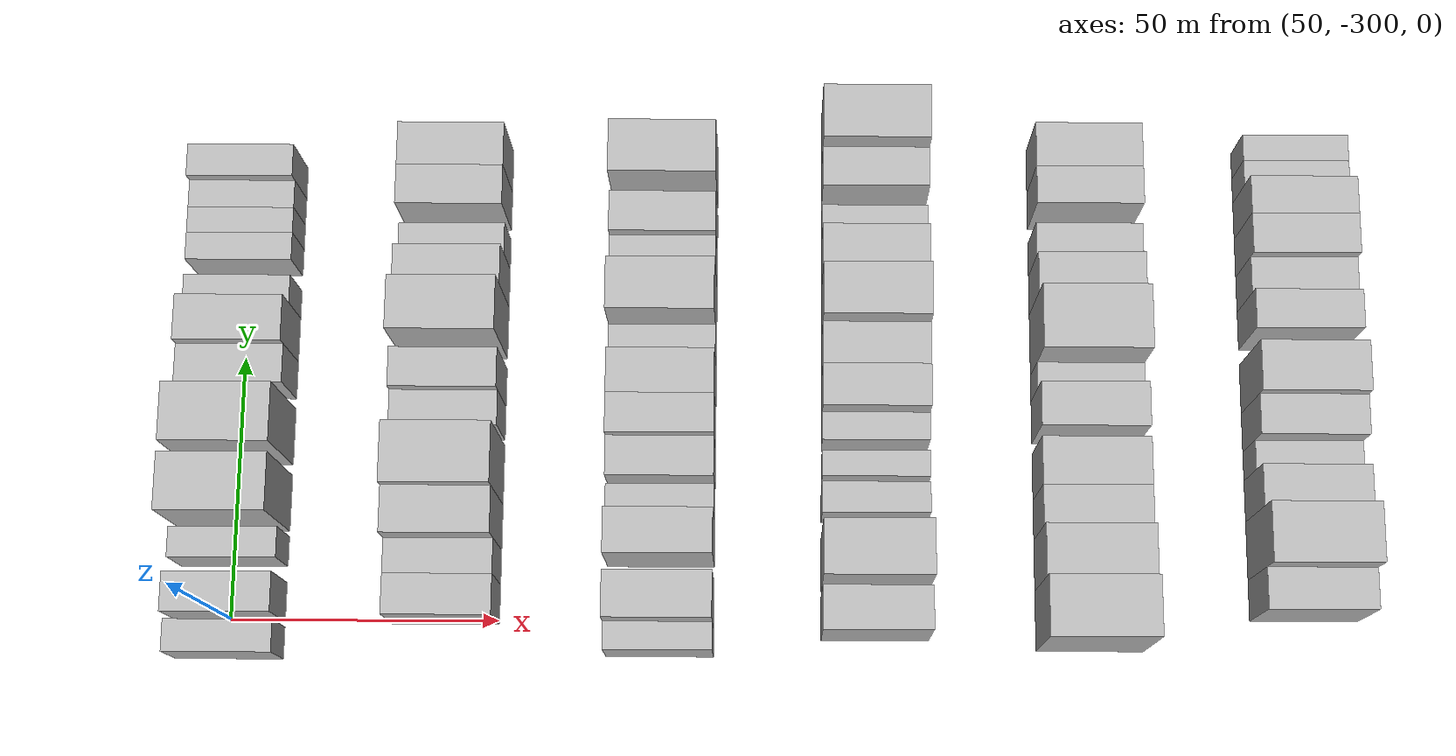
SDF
<sdf version="1.6">
 <world name="default">
  <model name="building_29">
   <static>1</static>
   <pose>50.0000 -304.2907 0 0.000000 0.000000 0.000000</pose>
   <link name="link">
    <pose>0 0 6.00 0 0 0</pose>
    <collision name="collision"><geometry><box><size>20.0000 5.9585 12.0000</size></box></geometry></collision>
    <visual name="visual">
     <cast_shadows>0</cast_shadows>
     <geometry><box><size>20.0000 5.9585 12.0000</size></box></geometry>
     <material>
      <script>
       <uri>model://HANNAS_wall/materials/scripts</uri>
       <uri>model://HANNAS_wall/materials/textures</uri>
       <name>vrc/HANNAS_wall</name>
      </script>
     </material>
    </visual>
   </link>
  </model>
  <model name="building_30">
   <static>1</static>
   <pose>50.0000 -296.6453 0 0.000000 0.000000 0.000000</pose>
   <link name="link">
    <pose>0 0 7.50 0 0 0</pose>
    <collision name="collision"><geometry><box><size>20.0000 7.3324 15.0000</size></box></geometry></collision>
    <visual name="visual">
     <cast_shadows>0</cast_shadows>
     <geometry><box><size>20.0000 7.3324 15.0000</size></box></geometry>
     <material>
      <script>
       <uri>model://HANNAS_wall/materials/scripts</uri>
       <uri>model://HANNAS_wall/materials/textures</uri>
       <name>vrc/HANNAS_wall</name>
      </script>
     </material>
    </visual>
   </link>
  </model>
  <model name="building_31">
   <static>1</static>
   <pose>50.0000 -287.1371 0 0.000000 0.000000 0.000000</pose>
   <link name="link">
    <pose>0 0 6.00 0 0 0</pose>
    <collision name="collision"><geometry><box><size>20.0000 5.6839 12.0000</size></box></geometry></collision>
    <visual name="visual">
     <cast_shadows>0</cast_shadows>
     <geometry><box><size>20.0000 5.6839 12.0000</size></box></geometry>
     <material>
      <script>
       <uri>model://HANNAS_wall/materials/scripts</uri>
       <uri>model://HANNAS_wall/materials/textures</uri>
       <name>vrc/HANNAS_wall</name>
      </script>
     </material>
    </visual>
   </link>
  </model>
  <model name="building_32">
   <static>1</static>
   <pose>50.0000 -277.9631 0 0.000000 0.000000 0.000000</pose>
   <link name="link">
    <pose>0 0 12.00 0 0 0</pose>
    <collision name="collision"><geometry><box><size>20.0000 10.6641 24.0000</size></box></geometry></collision>
    <visual name="visual">
     <cast_shadows>0</cast_shadows>
     <geometry><box><size>20.0000 10.6641 24.0000</size></box></geometry>
     <material>
      <script>
       <uri>model://HANNAS_wall/materials/scripts</uri>
       <uri>model://HANNAS_wall/materials/textures</uri>
       <name>vrc/HANNAS_wall</name>
      </script>
     </material>
    </visual>
   </link>
  </model>
  <model name="building_33">
   <static>1</static>
   <pose>50.0000 -265.1993 0 0.000000 0.000000 0.000000</pose>
   <link name="link">
    <pose>0 0 12.00 0 0 0</pose>
    <collision name="collision"><geometry><box><size>20.0000 10.8635 24.0000</size></box></geometry></collision>
    <visual name="visual">
     <cast_shadows>0</cast_shadows>
     <geometry><box><size>20.0000 10.8635 24.0000</size></box></geometry>
     <material>
      <script>
       <uri>model://HANNAS_wall/materials/scripts</uri>
       <uri>model://HANNAS_wall/materials/textures</uri>
       <name>vrc/HANNAS_wall</name>
      </script>
     </material>
    </visual>
   </link>
  </model>
  <model name="building_34">
   <static>1</static>
   <pose>50.0000 -254.1556 0 0.000000 0.000000 0.000000</pose>
   <link name="link">
    <pose>0 0 7.50 0 0 0</pose>
    <collision name="collision"><geometry><box><size>20.0000 7.2239 15.0000</size></box></geometry></collision>
    <visual name="visual">
     <cast_shadows>0</cast_shadows>
     <geometry><box><size>20.0000 7.2239 15.0000</size></box></geometry>
     <material>
      <script>
       <uri>model://HANNAS_wall/materials/scripts</uri>
       <uri>model://HANNAS_wall/materials/textures</uri>
       <name>vrc/HANNAS_wall</name>
      </script>
     </material>
    </visual>
   </link>
  </model>
  <model name="building_35">
   <static>1</static>
   <pose>50.0000 -246.2314 0 0.000000 0.000000 0.000000</pose>
   <link name="link">
    <pose>0 0 9.00 0 0 0</pose>
    <collision name="collision"><geometry><box><size>20.0000 8.6245 18.0000</size></box></geometry></collision>
    <visual name="visual">
     <cast_shadows>0</cast_shadows>
     <geometry><box><size>20.0000 8.6245 18.0000</size></box></geometry>
     <material>
      <script>
       <uri>model://HANNAS_wall/materials/scripts</uri>
       <uri>model://HANNAS_wall/materials/textures</uri>
       <name>vrc/HANNAS_wall</name>
      </script>
     </material>
    </visual>
   </link>
  </model>
  <model name="building_36">
   <static>1</static>
   <pose>50.0000 -239.2300 0 0.000000 0.000000 0.000000</pose>
   <link name="link">
    <pose>0 0 6.00 0 0 0</pose>
    <collision name="collision"><geometry><box><size>20.0000 5.3783 12.0000</size></box></geometry></collision>
    <visual name="visual">
     <cast_shadows>0</cast_shadows>
     <geometry><box><size>20.0000 5.3783 12.0000</size></box></geometry>
     <material>
      <script>
       <uri>model://HANNAS_wall/materials/scripts</uri>
       <uri>model://HANNAS_wall/materials/textures</uri>
       <name>vrc/HANNAS_wall</name>
      </script>
     </material>
    </visual>
   </link>
  </model>
  <model name="building_37">
   <static>1</static>
   <pose>50.0000 -230.9007 0 0.000000 0.000000 0.000000</pose>
   <link name="link">
    <pose>0 0 6.00 0 0 0</pose>
    <collision name="collision"><geometry><box><size>20.0000 5.2803 12.0000</size></box></geometry></collision>
    <visual name="visual">
     <cast_shadows>0</cast_shadows>
     <geometry><box><size>20.0000 5.2803 12.0000</size></box></geometry>
     <material>
      <script>
       <uri>model://HANNAS_wall/materials/scripts</uri>
       <uri>model://HANNAS_wall/materials/textures</uri>
       <name>vrc/HANNAS_wall</name>
      </script>
     </material>
    </visual>
   </link>
  </model>
  <model name="building_38">
   <static>1</static>
   <pose>50.0000 -225.8033 0 0.000000 0.000000 0.000000</pose>
   <link name="link">
    <pose>0 0 6.00 0 0 0</pose>
    <collision name="collision"><geometry><box><size>20.0000 4.9144 12.0000</size></box></geometry></collision>
    <visual name="visual">
     <cast_shadows>0</cast_shadows>
     <geometry><box><size>20.0000 4.9144 12.0000</size></box></geometry>
     <material>
      <script>
       <uri>model://HANNAS_wall/materials/scripts</uri>
       <uri>model://HANNAS_wall/materials/textures</uri>
       <name>vrc/HANNAS_wall</name>
      </script>
     </material>
    </visual>
   </link>
  </model>
  <model name="building_39">
   <static>1</static>
   <pose>50.0000 -220.6770 0 0.000000 0.000000 0.000000</pose>
   <link name="link">
    <pose>0 0 6.00 0 0 0</pose>
    <collision name="collision"><geometry><box><size>20.0000 5.3383 12.0000</size></box></geometry></collision>
    <visual name="visual">
     <cast_shadows>0</cast_shadows>
     <geometry><box><size>20.0000 5.3383 12.0000</size></box></geometry>
     <material>
      <script>
       <uri>model://HANNAS_wall/materials/scripts</uri>
       <uri>model://HANNAS_wall/materials/textures</uri>
       <name>vrc/HANNAS_wall</name>
      </script>
     </material>
    </visual>
   </link>
  </model>
  <model name="building_40">
   <static>1</static>
   <pose>50.0000 -214.9217 0 0.000000 0.000000 0.000000</pose>
   <link name="link">
    <pose>0 0 7.50 0 0 0</pose>
    <collision name="collision"><geometry><box><size>20.0000 6.1723 15.0000</size></box></geometry></collision>
    <visual name="visual">
     <cast_shadows>0</cast_shadows>
     <geometry><box><size>20.0000 6.1723 15.0000</size></box></geometry>
     <material>
      <script>
       <uri>model://HANNAS_wall/materials/scripts</uri>
       <uri>model://HANNAS_wall/materials/textures</uri>
       <name>vrc/HANNAS_wall</name>
      </script>
     </material>
    </visual>
   </link>
  </model>
  <model name="building_169">
   <static>1</static>
   <pose>90.0000 -296.9230 0 0.000000 0.000000 0.000000</pose>
   <link name="link">
    <pose>0 0 7.50 0 0 0</pose>
    <collision name="collision"><geometry><box><size>20.0000 7.4624 15.0000</size></box></geometry></collision>
    <visual name="visual">
     <cast_shadows>0</cast_shadows>
     <geometry><box><size>20.0000 7.4624 15.0000</size></box></geometry>
     <material>
      <script>
       <uri>model://HANNAS_wall/materials/scripts</uri>
       <uri>model://HANNAS_wall/materials/textures</uri>
       <name>vrc/HANNAS_wall</name>
      </script>
     </material>
    </visual>
   </link>
  </model>
  <model name="building_170">
   <static>1</static>
   <pose>90.0000 -289.9338 0 0.000000 0.000000 0.000000</pose>
   <link name="link">
    <pose>0 0 7.50 0 0 0</pose>
    <collision name="collision"><geometry><box><size>20.0000 6.5160 15.0000</size></box></geometry></collision>
    <visual name="visual">
     <cast_shadows>0</cast_shadows>
     <geometry><box><size>20.0000 6.5160 15.0000</size></box></geometry>
     <material>
      <script>
       <uri>model://HANNAS_wall/materials/scripts</uri>
       <uri>model://HANNAS_wall/materials/textures</uri>
       <name>vrc/HANNAS_wall</name>
      </script>
     </material>
    </visual>
   </link>
  </model>
  <model name="building_171">
   <static>1</static>
   <pose>90.0000 -282.3563 0 0.000000 0.000000 0.000000</pose>
   <link name="link">
    <pose>0 0 10.50 0 0 0</pose>
    <collision name="collision"><geometry><box><size>20.0000 8.6391 21.0000</size></box></geometry></collision>
    <visual name="visual">
     <cast_shadows>0</cast_shadows>
     <geometry><box><size>20.0000 8.6391 21.0000</size></box></geometry>
     <material>
      <script>
       <uri>model://HANNAS_wall/materials/scripts</uri>
       <uri>model://HANNAS_wall/materials/textures</uri>
       <name>vrc/HANNAS_wall</name>
      </script>
     </material>
    </visual>
   </link>
  </model>
  <model name="building_172">
   <static>1</static>
   <pose>90.0000 -272.3734 0 0.000000 0.000000 0.000000</pose>
   <link name="link">
    <pose>0 0 12.00 0 0 0</pose>
    <collision name="collision"><geometry><box><size>20.0000 11.3267 24.0000</size></box></geometry></collision>
    <visual name="visual">
     <cast_shadows>0</cast_shadows>
     <geometry><box><size>20.0000 11.3267 24.0000</size></box></geometry>
     <material>
      <script>
       <uri>model://HANNAS_wall/materials/scripts</uri>
       <uri>model://HANNAS_wall/materials/textures</uri>
       <name>vrc/HANNAS_wall</name>
      </script>
     </material>
    </visual>
   </link>
  </model>
  <model name="building_173">
   <static>1</static>
   <pose>90.0000 -262.4184 0 0.000000 0.000000 0.000000</pose>
   <link name="link">
    <pose>0 0 7.50 0 0 0</pose>
    <collision name="collision"><geometry><box><size>20.0000 6.5833 15.0000</size></box></geometry></collision>
    <visual name="visual">
     <cast_shadows>0</cast_shadows>
     <geometry><box><size>20.0000 6.5833 15.0000</size></box></geometry>
     <material>
      <script>
       <uri>model://HANNAS_wall/materials/scripts</uri>
       <uri>model://HANNAS_wall/materials/textures</uri>
       <name>vrc/HANNAS_wall</name>
      </script>
     </material>
    </visual>
   </link>
  </model>
  <model name="building_174">
   <static>1</static>
   <pose>90.0000 -255.4258 0 0.000000 0.000000 0.000000</pose>
   <link name="link">
    <pose>0 0 9.00 0 0 0</pose>
    <collision name="collision"><geometry><box><size>20.0000 7.4017 18.0000</size></box></geometry></collision>
    <visual name="visual">
     <cast_shadows>0</cast_shadows>
     <geometry><box><size>20.0000 7.4017 18.0000</size></box></geometry>
     <material>
      <script>
       <uri>model://HANNAS_wall/materials/scripts</uri>
       <uri>model://HANNAS_wall/materials/textures</uri>
       <name>vrc/HANNAS_wall</name>
      </script>
     </material>
    </visual>
   </link>
  </model>
  <model name="building_175">
   <static>1</static>
   <pose>90.0000 -244.6692 0 0.000000 0.000000 0.000000</pose>
   <link name="link">
    <pose>0 0 12.00 0 0 0</pose>
    <collision name="collision"><geometry><box><size>20.0000 10.1116 24.0000</size></box></geometry></collision>
    <visual name="visual">
     <cast_shadows>0</cast_shadows>
     <geometry><box><size>20.0000 10.1116 24.0000</size></box></geometry>
     <material>
      <script>
       <uri>model://HANNAS_wall/materials/scripts</uri>
       <uri>model://HANNAS_wall/materials/textures</uri>
       <name>vrc/HANNAS_wall</name>
      </script>
     </material>
    </visual>
   </link>
  </model>
  <model name="building_176">
   <static>1</static>
   <pose>90.0000 -235.8378 0 0.000000 0.000000 0.000000</pose>
   <link name="link">
    <pose>0 0 9.00 0 0 0</pose>
    <collision name="collision"><geometry><box><size>20.0000 7.5512 18.0000</size></box></geometry></collision>
    <visual name="visual">
     <cast_shadows>0</cast_shadows>
     <geometry><box><size>20.0000 7.5512 18.0000</size></box></geometry>
     <material>
      <script>
       <uri>model://HANNAS_wall/materials/scripts</uri>
       <uri>model://HANNAS_wall/materials/textures</uri>
       <name>vrc/HANNAS_wall</name>
      </script>
     </material>
    </visual>
   </link>
  </model>
  <model name="building_177">
   <static>1</static>
   <pose>90.0000 -229.1166 0 0.000000 0.000000 0.000000</pose>
   <link name="link">
    <pose>0 0 6.00 0 0 0</pose>
    <collision name="collision"><geometry><box><size>20.0000 5.8911 12.0000</size></box></geometry></collision>
    <visual name="visual">
     <cast_shadows>0</cast_shadows>
     <geometry><box><size>20.0000 5.8911 12.0000</size></box></geometry>
     <material>
      <script>
       <uri>model://HANNAS_wall/materials/scripts</uri>
       <uri>model://HANNAS_wall/materials/textures</uri>
       <name>vrc/HANNAS_wall</name>
      </script>
     </material>
    </visual>
   </link>
  </model>
  <model name="building_178">
   <static>1</static>
   <pose>90.0000 -220.3892 0 0.000000 0.000000 0.000000</pose>
   <link name="link">
    <pose>0 0 9.00 0 0 0</pose>
    <collision name="collision"><geometry><box><size>20.0000 7.5639 18.0000</size></box></geometry></collision>
    <visual name="visual">
     <cast_shadows>0</cast_shadows>
     <geometry><box><size>20.0000 7.5639 18.0000</size></box></geometry>
     <material>
      <script>
       <uri>model://HANNAS_wall/materials/scripts</uri>
       <uri>model://HANNAS_wall/materials/textures</uri>
       <name>vrc/HANNAS_wall</name>
      </script>
     </material>
    </visual>
   </link>
  </model>
  <model name="building_179">
   <static>1</static>
   <pose>90.0000 -212.4247 0 0.000000 0.000000 0.000000</pose>
   <link name="link">
    <pose>0 0 9.00 0 0 0</pose>
    <collision name="collision"><geometry><box><size>20.0000 8.3650 18.0000</size></box></geometry></collision>
    <visual name="visual">
     <cast_shadows>0</cast_shadows>
     <geometry><box><size>20.0000 8.3650 18.0000</size></box></geometry>
     <material>
      <script>
       <uri>model://HANNAS_wall/materials/scripts</uri>
       <uri>model://HANNAS_wall/materials/textures</uri>
       <name>vrc/HANNAS_wall</name>
      </script>
     </material>
    </visual>
   </link>
  </model>
  <model name="building_308">
   <static>1</static>
   <pose>130.0000 -303.9252 0 0.000000 0.000000 0.000000</pose>
   <link name="link">
    <pose>0 0 6.00 0 0 0</pose>
    <collision name="collision"><geometry><box><size>20.0000 5.1656 12.0000</size></box></geometry></collision>
    <visual name="visual">
     <cast_shadows>0</cast_shadows>
     <geometry><box><size>20.0000 5.1656 12.0000</size></box></geometry>
     <material>
      <script>
       <uri>model://HANNAS_wall/materials/scripts</uri>
       <uri>model://HANNAS_wall/materials/textures</uri>
       <name>vrc/HANNAS_wall</name>
      </script>
     </material>
    </visual>
   </link>
  </model>
  <model name="building_309">
   <static>1</static>
   <pose>130.0000 -297.0179 0 0.000000 0.000000 0.000000</pose>
   <link name="link">
    <pose>0 0 9.00 0 0 0</pose>
    <collision name="collision"><geometry><box><size>20.0000 8.6488 18.0000</size></box></geometry></collision>
    <visual name="visual">
     <cast_shadows>0</cast_shadows>
     <geometry><box><size>20.0000 8.6488 18.0000</size></box></geometry>
     <material>
      <script>
       <uri>model://HANNAS_wall/materials/scripts</uri>
       <uri>model://HANNAS_wall/materials/textures</uri>
       <name>vrc/HANNAS_wall</name>
      </script>
     </material>
    </visual>
   </link>
  </model>
  <model name="building_310">
   <static>1</static>
   <pose>130.0000 -285.4821 0 0.000000 0.000000 0.000000</pose>
   <link name="link">
    <pose>0 0 9.00 0 0 0</pose>
    <collision name="collision"><geometry><box><size>20.0000 8.4229 18.0000</size></box></geometry></collision>
    <visual name="visual">
     <cast_shadows>0</cast_shadows>
     <geometry><box><size>20.0000 8.4229 18.0000</size></box></geometry>
     <material>
      <script>
       <uri>model://HANNAS_wall/materials/scripts</uri>
       <uri>model://HANNAS_wall/materials/textures</uri>
       <name>vrc/HANNAS_wall</name>
      </script>
     </material>
    </visual>
   </link>
  </model>
  <model name="building_311">
   <static>1</static>
   <pose>130.0000 -278.6032 0 0.000000 0.000000 0.000000</pose>
   <link name="link">
    <pose>0 0 6.00 0 0 0</pose>
    <collision name="collision"><geometry><box><size>20.0000 5.3350 12.0000</size></box></geometry></collision>
    <visual name="visual">
     <cast_shadows>0</cast_shadows>
     <geometry><box><size>20.0000 5.3350 12.0000</size></box></geometry>
     <material>
      <script>
       <uri>model://HANNAS_wall/materials/scripts</uri>
       <uri>model://HANNAS_wall/materials/textures</uri>
       <name>vrc/HANNAS_wall</name>
      </script>
     </material>
    </visual>
   </link>
  </model>
  <model name="building_312">
   <static>1</static>
   <pose>130.0000 -271.2094 0 0.000000 0.000000 0.000000</pose>
   <link name="link">
    <pose>0 0 7.50 0 0 0</pose>
    <collision name="collision"><geometry><box><size>20.0000 7.4524 15.0000</size></box></geometry></collision>
    <visual name="visual">
     <cast_shadows>0</cast_shadows>
     <geometry><box><size>20.0000 7.4524 15.0000</size></box></geometry>
     <material>
      <script>
       <uri>model://HANNAS_wall/materials/scripts</uri>
       <uri>model://HANNAS_wall/materials/textures</uri>
       <name>vrc/HANNAS_wall</name>
      </script>
     </material>
    </visual>
   </link>
  </model>
  <model name="building_313">
   <static>1</static>
   <pose>130.0000 -263.7749 0 0.000000 0.000000 0.000000</pose>
   <link name="link">
    <pose>0 0 9.00 0 0 0</pose>
    <collision name="collision"><geometry><box><size>20.0000 7.4167 18.0000</size></box></geometry></collision>
    <visual name="visual">
     <cast_shadows>0</cast_shadows>
     <geometry><box><size>20.0000 7.4167 18.0000</size></box></geometry>
     <material>
      <script>
       <uri>model://HANNAS_wall/materials/scripts</uri>
       <uri>model://HANNAS_wall/materials/textures</uri>
       <name>vrc/HANNAS_wall</name>
      </script>
     </material>
    </visual>
   </link>
  </model>
  <model name="building_314">
   <static>1</static>
   <pose>130.0000 -255.8426 0 0.000000 0.000000 0.000000</pose>
   <link name="link">
    <pose>0 0 9.00 0 0 0</pose>
    <collision name="collision"><geometry><box><size>20.0000 8.4478 18.0000</size></box></geometry></collision>
    <visual name="visual">
     <cast_shadows>0</cast_shadows>
     <geometry><box><size>20.0000 8.4478 18.0000</size></box></geometry>
     <material>
      <script>
       <uri>model://HANNAS_wall/materials/scripts</uri>
       <uri>model://HANNAS_wall/materials/textures</uri>
       <name>vrc/HANNAS_wall</name>
      </script>
     </material>
    </visual>
   </link>
  </model>
  <model name="building_315">
   <static>1</static>
   <pose>130.0000 -248.6706 0 0.000000 0.000000 0.000000</pose>
   <link name="link">
    <pose>0 0 6.00 0 0 0</pose>
    <collision name="collision"><geometry><box><size>20.0000 5.8962 12.0000</size></box></geometry></collision>
    <visual name="visual">
     <cast_shadows>0</cast_shadows>
     <geometry><box><size>20.0000 5.8962 12.0000</size></box></geometry>
     <material>
      <script>
       <uri>model://HANNAS_wall/materials/scripts</uri>
       <uri>model://HANNAS_wall/materials/textures</uri>
       <name>vrc/HANNAS_wall</name>
      </script>
     </material>
    </visual>
   </link>
  </model>
  <model name="building_316">
   <static>1</static>
   <pose>130.0000 -240.8244 0 0.000000 0.000000 0.000000</pose>
   <link name="link">
    <pose>0 0 12.00 0 0 0</pose>
    <collision name="collision"><geometry><box><size>20.0000 9.7961 24.0000</size></box></geometry></collision>
    <visual name="visual">
     <cast_shadows>0</cast_shadows>
     <geometry><box><size>20.0000 9.7961 24.0000</size></box></geometry>
     <material>
      <script>
       <uri>model://HANNAS_wall/materials/scripts</uri>
       <uri>model://HANNAS_wall/materials/textures</uri>
       <name>vrc/HANNAS_wall</name>
      </script>
     </material>
    </visual>
   </link>
  </model>
  <model name="building_317">
   <static>1</static>
   <pose>130.0000 -232.5791 0 0.000000 0.000000 0.000000</pose>
   <link name="link">
    <pose>0 0 7.50 0 0 0</pose>
    <collision name="collision"><geometry><box><size>20.0000 6.6946 15.0000</size></box></geometry></collision>
    <visual name="visual">
     <cast_shadows>0</cast_shadows>
     <geometry><box><size>20.0000 6.6946 15.0000</size></box></geometry>
     <material>
      <script>
       <uri>model://HANNAS_wall/materials/scripts</uri>
       <uri>model://HANNAS_wall/materials/textures</uri>
       <name>vrc/HANNAS_wall</name>
      </script>
     </material>
    </visual>
   </link>
  </model>
  <model name="building_318">
   <static>1</static>
   <pose>130.0000 -225.3981 0 0.000000 0.000000 0.000000</pose>
   <link name="link">
    <pose>0 0 9.00 0 0 0</pose>
    <collision name="collision"><geometry><box><size>20.0000 7.6673 18.0000</size></box></geometry></collision>
    <visual name="visual">
     <cast_shadows>0</cast_shadows>
     <geometry><box><size>20.0000 7.6673 18.0000</size></box></geometry>
     <material>
      <script>
       <uri>model://HANNAS_wall/materials/scripts</uri>
       <uri>model://HANNAS_wall/materials/textures</uri>
       <name>vrc/HANNAS_wall</name>
      </script>
     </material>
    </visual>
   </link>
  </model>
  <model name="building_319">
   <static>1</static>
   <pose>130.0000 -214.5631 0 0.000000 0.000000 0.000000</pose>
   <link name="link">
    <pose>0 0 12.00 0 0 0</pose>
    <collision name="collision"><geometry><box><size>20.0000 10.0028 24.0000</size></box></geometry></collision>
    <visual name="visual">
     <cast_shadows>0</cast_shadows>
     <geometry><box><size>20.0000 10.0028 24.0000</size></box></geometry>
     <material>
      <script>
       <uri>model://HANNAS_wall/materials/scripts</uri>
       <uri>model://HANNAS_wall/materials/textures</uri>
       <name>vrc/HANNAS_wall</name>
      </script>
     </material>
    </visual>
   </link>
  </model>
  <model name="building_450">
   <static>1</static>
   <pose>170.0000 -299.3121 0 0.000000 0.000000 0.000000</pose>
   <link name="link">
    <pose>0 0 9.00 0 0 0</pose>
    <collision name="collision"><geometry><box><size>20.0000 8.0788 18.0000</size></box></geometry></collision>
    <visual name="visual">
     <cast_shadows>0</cast_shadows>
     <geometry><box><size>20.0000 8.0788 18.0000</size></box></geometry>
     <material>
      <script>
       <uri>model://HANNAS_wall/materials/scripts</uri>
       <uri>model://HANNAS_wall/materials/textures</uri>
       <name>vrc/HANNAS_wall</name>
      </script>
     </material>
    </visual>
   </link>
  </model>
  <model name="building_451">
   <static>1</static>
   <pose>170.0000 -289.1927 0 0.000000 0.000000 0.000000</pose>
   <link name="link">
    <pose>0 0 12.00 0 0 0</pose>
    <collision name="collision"><geometry><box><size>20.0000 10.1599 24.0000</size></box></geometry></collision>
    <visual name="visual">
     <cast_shadows>0</cast_shadows>
     <geometry><box><size>20.0000 10.1599 24.0000</size></box></geometry>
     <material>
      <script>
       <uri>model://HANNAS_wall/materials/scripts</uri>
       <uri>model://HANNAS_wall/materials/textures</uri>
       <name>vrc/HANNAS_wall</name>
      </script>
     </material>
    </visual>
   </link>
  </model>
  <model name="building_452">
   <static>1</static>
   <pose>170.0000 -278.2195 0 0.000000 0.000000 0.000000</pose>
   <link name="link">
    <pose>0 0 6.00 0 0 0</pose>
    <collision name="collision"><geometry><box><size>20.0000 5.7866 12.0000</size></box></geometry></collision>
    <visual name="visual">
     <cast_shadows>0</cast_shadows>
     <geometry><box><size>20.0000 5.7866 12.0000</size></box></geometry>
     <material>
      <script>
       <uri>model://HANNAS_wall/materials/scripts</uri>
       <uri>model://HANNAS_wall/materials/textures</uri>
       <name>vrc/HANNAS_wall</name>
      </script>
     </material>
    </visual>
   </link>
  </model>
  <model name="building_453">
   <static>1</static>
   <pose>170.0000 -271.9118 0 0.000000 0.000000 0.000000</pose>
   <link name="link">
    <pose>0 0 6.00 0 0 0</pose>
    <collision name="collision"><geometry><box><size>20.0000 4.8288 12.0000</size></box></geometry></collision>
    <visual name="visual">
     <cast_shadows>0</cast_shadows>
     <geometry><box><size>20.0000 4.8288 12.0000</size></box></geometry>
     <material>
      <script>
       <uri>model://HANNAS_wall/materials/scripts</uri>
       <uri>model://HANNAS_wall/materials/textures</uri>
       <name>vrc/HANNAS_wall</name>
      </script>
     </material>
    </visual>
   </link>
  </model>
  <model name="building_454">
   <static>1</static>
   <pose>170.0000 -264.8932 0 0.000000 0.000000 0.000000</pose>
   <link name="link">
    <pose>0 0 6.00 0 0 0</pose>
    <collision name="collision"><geometry><box><size>20.0000 5.2085 12.0000</size></box></geometry></collision>
    <visual name="visual">
     <cast_shadows>0</cast_shadows>
     <geometry><box><size>20.0000 5.2085 12.0000</size></box></geometry>
     <material>
      <script>
       <uri>model://HANNAS_wall/materials/scripts</uri>
       <uri>model://HANNAS_wall/materials/textures</uri>
       <name>vrc/HANNAS_wall</name>
      </script>
     </material>
    </visual>
   </link>
  </model>
  <model name="building_455">
   <static>1</static>
   <pose>170.0000 -258.3301 0 0.000000 0.000000 0.000000</pose>
   <link name="link">
    <pose>0 0 9.00 0 0 0</pose>
    <collision name="collision"><geometry><box><size>20.0000 7.9177 18.0000</size></box></geometry></collision>
    <visual name="visual">
     <cast_shadows>0</cast_shadows>
     <geometry><box><size>20.0000 7.9177 18.0000</size></box></geometry>
     <material>
      <script>
       <uri>model://HANNAS_wall/materials/scripts</uri>
       <uri>model://HANNAS_wall/materials/textures</uri>
       <name>vrc/HANNAS_wall</name>
      </script>
     </material>
    </visual>
   </link>
  </model>
  <model name="building_456">
   <static>1</static>
   <pose>170.0000 -250.4302 0 0.000000 0.000000 0.000000</pose>
   <link name="link">
    <pose>0 0 9.00 0 0 0</pose>
    <collision name="collision"><geometry><box><size>20.0000 7.8820 18.0000</size></box></geometry></collision>
    <visual name="visual">
     <cast_shadows>0</cast_shadows>
     <geometry><box><size>20.0000 7.8820 18.0000</size></box></geometry>
     <material>
      <script>
       <uri>model://HANNAS_wall/materials/scripts</uri>
       <uri>model://HANNAS_wall/materials/textures</uri>
       <name>vrc/HANNAS_wall</name>
      </script>
     </material>
    </visual>
   </link>
  </model>
  <model name="building_457">
   <static>1</static>
   <pose>170.0000 -241.5859 0 0.000000 0.000000 0.000000</pose>
   <link name="link">
    <pose>0 0 12.00 0 0 0</pose>
    <collision name="collision"><geometry><box><size>20.0000 9.8066 24.0000</size></box></geometry></collision>
    <visual name="visual">
     <cast_shadows>0</cast_shadows>
     <geometry><box><size>20.0000 9.8066 24.0000</size></box></geometry>
     <material>
      <script>
       <uri>model://HANNAS_wall/materials/scripts</uri>
       <uri>model://HANNAS_wall/materials/textures</uri>
       <name>vrc/HANNAS_wall</name>
      </script>
     </material>
    </visual>
   </link>
  </model>
  <model name="building_458">
   <static>1</static>
   <pose>170.0000 -232.1846 0 0.000000 0.000000 0.000000</pose>
   <link name="link">
    <pose>0 0 9.00 0 0 0</pose>
    <collision name="collision"><geometry><box><size>20.0000 8.9961 18.0000</size></box></geometry></collision>
    <visual name="visual">
     <cast_shadows>0</cast_shadows>
     <geometry><box><size>20.0000 8.9961 18.0000</size></box></geometry>
     <material>
      <script>
       <uri>model://HANNAS_wall/materials/scripts</uri>
       <uri>model://HANNAS_wall/materials/textures</uri>
       <name>vrc/HANNAS_wall</name>
      </script>
     </material>
    </visual>
   </link>
  </model>
  <model name="building_459">
   <static>1</static>
   <pose>170.0000 -224.9838 0 0.000000 0.000000 0.000000</pose>
   <link name="link">
    <pose>0 0 6.00 0 0 0</pose>
    <collision name="collision"><geometry><box><size>20.0000 5.4054 12.0000</size></box></geometry></collision>
    <visual name="visual">
     <cast_shadows>0</cast_shadows>
     <geometry><box><size>20.0000 5.4054 12.0000</size></box></geometry>
     <material>
      <script>
       <uri>model://HANNAS_wall/materials/scripts</uri>
       <uri>model://HANNAS_wall/materials/textures</uri>
       <name>vrc/HANNAS_wall</name>
      </script>
     </material>
    </visual>
   </link>
  </model>
  <model name="building_460">
   <static>1</static>
   <pose>170.0000 -216.5172 0 0.000000 0.000000 0.000000</pose>
   <link name="link">
    <pose>0 0 9.00 0 0 0</pose>
    <collision name="collision"><geometry><box><size>20.0000 7.5278 18.0000</size></box></geometry></collision>
    <visual name="visual">
     <cast_shadows>0</cast_shadows>
     <geometry><box><size>20.0000 7.5278 18.0000</size></box></geometry>
     <material>
      <script>
       <uri>model://HANNAS_wall/materials/scripts</uri>
       <uri>model://HANNAS_wall/materials/textures</uri>
       <name>vrc/HANNAS_wall</name>
      </script>
     </material>
    </visual>
   </link>
  </model>
  <model name="building_461">
   <static>1</static>
   <pose>170.0000 -207.6434 0 0.000000 0.000000 0.000000</pose>
   <link name="link">
    <pose>0 0 12.00 0 0 0</pose>
    <collision name="collision"><geometry><box><size>20.0000 10.2198 24.0000</size></box></geometry></collision>
    <visual name="visual">
     <cast_shadows>0</cast_shadows>
     <geometry><box><size>20.0000 10.2198 24.0000</size></box></geometry>
     <material>
      <script>
       <uri>model://HANNAS_wall/materials/scripts</uri>
       <uri>model://HANNAS_wall/materials/textures</uri>
       <name>vrc/HANNAS_wall</name>
      </script>
     </material>
    </visual>
   </link>
  </model>
  <model name="building_589">
   <static>1</static>
   <pose>210.0000 -299.5543 0 0.000000 0.000000 0.000000</pose>
   <link name="link">
    <pose>0 0 12.00 0 0 0</pose>
    <collision name="collision"><geometry><box><size>20.0000 11.1547 24.0000</size></box></geometry></collision>
    <visual name="visual">
     <cast_shadows>0</cast_shadows>
     <geometry><box><size>20.0000 11.1547 24.0000</size></box></geometry>
     <material>
      <script>
       <uri>model://HANNAS_wall/materials/scripts</uri>
       <uri>model://HANNAS_wall/materials/textures</uri>
       <name>vrc/HANNAS_wall</name>
      </script>
     </material>
    </visual>
   </link>
  </model>
  <model name="building_590">
   <static>1</static>
   <pose>210.0000 -289.1479 0 0.000000 0.000000 0.000000</pose>
   <link name="link">
    <pose>0 0 10.50 0 0 0</pose>
    <collision name="collision"><geometry><box><size>20.0000 9.6580 21.0000</size></box></geometry></collision>
    <visual name="visual">
     <cast_shadows>0</cast_shadows>
     <geometry><box><size>20.0000 9.6580 21.0000</size></box></geometry>
     <material>
      <script>
       <uri>model://HANNAS_wall/materials/scripts</uri>
       <uri>model://HANNAS_wall/materials/textures</uri>
       <name>vrc/HANNAS_wall</name>
      </script>
     </material>
    </visual>
   </link>
  </model>
  <model name="building_591">
   <static>1</static>
   <pose>210.0000 -280.5415 0 0.000000 0.000000 0.000000</pose>
   <link name="link">
    <pose>0 0 9.00 0 0 0</pose>
    <collision name="collision"><geometry><box><size>20.0000 7.5548 18.0000</size></box></geometry></collision>
    <visual name="visual">
     <cast_shadows>0</cast_shadows>
     <geometry><box><size>20.0000 7.5548 18.0000</size></box></geometry>
     <material>
      <script>
       <uri>model://HANNAS_wall/materials/scripts</uri>
       <uri>model://HANNAS_wall/materials/textures</uri>
       <name>vrc/HANNAS_wall</name>
      </script>
     </material>
    </visual>
   </link>
  </model>
  <model name="building_592">
   <static>1</static>
   <pose>210.0000 -272.3023 0 0.000000 0.000000 0.000000</pose>
   <link name="link">
    <pose>0 0 9.00 0 0 0</pose>
    <collision name="collision"><geometry><box><size>20.0000 8.9237 18.0000</size></box></geometry></collision>
    <visual name="visual">
     <cast_shadows>0</cast_shadows>
     <geometry><box><size>20.0000 8.9237 18.0000</size></box></geometry>
     <material>
      <script>
       <uri>model://HANNAS_wall/materials/scripts</uri>
       <uri>model://HANNAS_wall/materials/textures</uri>
       <name>vrc/HANNAS_wall</name>
      </script>
     </material>
    </visual>
   </link>
  </model>
  <model name="building_593">
   <static>1</static>
   <pose>210.0000 -261.7222 0 0.000000 0.000000 0.000000</pose>
   <link name="link">
    <pose>0 0 9.00 0 0 0</pose>
    <collision name="collision"><geometry><box><size>20.0000 8.2365 18.0000</size></box></geometry></collision>
    <visual name="visual">
     <cast_shadows>0</cast_shadows>
     <geometry><box><size>20.0000 8.2365 18.0000</size></box></geometry>
     <material>
      <script>
       <uri>model://HANNAS_wall/materials/scripts</uri>
       <uri>model://HANNAS_wall/materials/textures</uri>
       <name>vrc/HANNAS_wall</name>
      </script>
     </material>
    </visual>
   </link>
  </model>
  <model name="building_594">
   <static>1</static>
   <pose>210.0000 -255.1317 0 0.000000 0.000000 0.000000</pose>
   <link name="link">
    <pose>0 0 6.00 0 0 0</pose>
    <collision name="collision"><geometry><box><size>20.0000 4.9444 12.0000</size></box></geometry></collision>
    <visual name="visual">
     <cast_shadows>0</cast_shadows>
     <geometry><box><size>20.0000 4.9444 12.0000</size></box></geometry>
     <material>
      <script>
       <uri>model://HANNAS_wall/materials/scripts</uri>
       <uri>model://HANNAS_wall/materials/textures</uri>
       <name>vrc/HANNAS_wall</name>
      </script>
     </material>
    </visual>
   </link>
  </model>
  <model name="building_595">
   <static>1</static>
   <pose>210.0000 -246.6597 0 0.000000 0.000000 0.000000</pose>
   <link name="link">
    <pose>0 0 12.00 0 0 0</pose>
    <collision name="collision"><geometry><box><size>20.0000 11.9996 24.0000</size></box></geometry></collision>
    <visual name="visual">
     <cast_shadows>0</cast_shadows>
     <geometry><box><size>20.0000 11.9996 24.0000</size></box></geometry>
     <material>
      <script>
       <uri>model://HANNAS_wall/materials/scripts</uri>
       <uri>model://HANNAS_wall/materials/textures</uri>
       <name>vrc/HANNAS_wall</name>
      </script>
     </material>
    </visual>
   </link>
  </model>
  <model name="building_596">
   <static>1</static>
   <pose>210.0000 -236.8004 0 0.000000 0.000000 0.000000</pose>
   <link name="link">
    <pose>0 0 9.00 0 0 0</pose>
    <collision name="collision"><geometry><box><size>20.0000 7.7190 18.0000</size></box></geometry></collision>
    <visual name="visual">
     <cast_shadows>0</cast_shadows>
     <geometry><box><size>20.0000 7.7190 18.0000</size></box></geometry>
     <material>
      <script>
       <uri>model://HANNAS_wall/materials/scripts</uri>
       <uri>model://HANNAS_wall/materials/textures</uri>
       <name>vrc/HANNAS_wall</name>
      </script>
     </material>
    </visual>
   </link>
  </model>
  <model name="building_597">
   <static>1</static>
   <pose>210.0000 -229.7276 0 0.000000 0.000000 0.000000</pose>
   <link name="link">
    <pose>0 0 7.50 0 0 0</pose>
    <collision name="collision"><geometry><box><size>20.0000 6.4266 15.0000</size></box></geometry></collision>
    <visual name="visual">
     <cast_shadows>0</cast_shadows>
     <geometry><box><size>20.0000 6.4266 15.0000</size></box></geometry>
     <material>
      <script>
       <uri>model://HANNAS_wall/materials/scripts</uri>
       <uri>model://HANNAS_wall/materials/textures</uri>
       <name>vrc/HANNAS_wall</name>
      </script>
     </material>
    </visual>
   </link>
  </model>
  <model name="building_598">
   <static>1</static>
   <pose>210.0000 -219.8873 0 0.000000 0.000000 0.000000</pose>
   <link name="link">
    <pose>0 0 9.00 0 0 0</pose>
    <collision name="collision"><geometry><box><size>20.0000 7.2540 18.0000</size></box></geometry></collision>
    <visual name="visual">
     <cast_shadows>0</cast_shadows>
     <geometry><box><size>20.0000 7.2540 18.0000</size></box></geometry>
     <material>
      <script>
       <uri>model://HANNAS_wall/materials/scripts</uri>
       <uri>model://HANNAS_wall/materials/textures</uri>
       <name>vrc/HANNAS_wall</name>
      </script>
     </material>
    </visual>
   </link>
  </model>
  <model name="building_599">
   <static>1</static>
   <pose>210.0000 -212.0174 0 0.000000 0.000000 0.000000</pose>
   <link name="link">
    <pose>0 0 9.00 0 0 0</pose>
    <collision name="collision"><geometry><box><size>20.0000 8.4859 18.0000</size></box></geometry></collision>
    <visual name="visual">
     <cast_shadows>0</cast_shadows>
     <geometry><box><size>20.0000 8.4859 18.0000</size></box></geometry>
     <material>
      <script>
       <uri>model://HANNAS_wall/materials/scripts</uri>
       <uri>model://HANNAS_wall/materials/textures</uri>
       <name>vrc/HANNAS_wall</name>
      </script>
     </material>
    </visual>
   </link>
  </model>
  <model name="building_729">
   <static>1</static>
   <pose>250.0000 -295.5196 0 0.000000 0.000000 0.000000</pose>
   <link name="link">
    <pose>0 0 9.00 0 0 0</pose>
    <collision name="collision"><geometry><box><size>20.0000 7.6472 18.0000</size></box></geometry></collision>
    <visual name="visual">
     <cast_shadows>0</cast_shadows>
     <geometry><box><size>20.0000 7.6472 18.0000</size></box></geometry>
     <material>
      <script>
       <uri>model://HANNAS_wall/materials/scripts</uri>
       <uri>model://HANNAS_wall/materials/textures</uri>
       <name>vrc/HANNAS_wall</name>
      </script>
     </material>
    </visual>
   </link>
  </model>
  <model name="building_730">
   <static>1</static>
   <pose>250.0000 -286.1712 0 0.000000 0.000000 0.000000</pose>
   <link name="link">
    <pose>0 0 12.00 0 0 0</pose>
    <collision name="collision"><geometry><box><size>20.0000 11.0496 24.0000</size></box></geometry></collision>
    <visual name="visual">
     <cast_shadows>0</cast_shadows>
     <geometry><box><size>20.0000 11.0496 24.0000</size></box></geometry>
     <material>
      <script>
       <uri>model://HANNAS_wall/materials/scripts</uri>
       <uri>model://HANNAS_wall/materials/textures</uri>
       <name>vrc/HANNAS_wall</name>
      </script>
     </material>
    </visual>
   </link>
  </model>
  <model name="building_731">
   <static>1</static>
   <pose>250.0000 -276.7251 0 0.000000 0.000000 0.000000</pose>
   <link name="link">
    <pose>0 0 9.00 0 0 0</pose>
    <collision name="collision"><geometry><box><size>20.0000 7.8428 18.0000</size></box></geometry></collision>
    <visual name="visual">
     <cast_shadows>0</cast_shadows>
     <geometry><box><size>20.0000 7.8428 18.0000</size></box></geometry>
     <material>
      <script>
       <uri>model://HANNAS_wall/materials/scripts</uri>
       <uri>model://HANNAS_wall/materials/textures</uri>
       <name>vrc/HANNAS_wall</name>
      </script>
     </material>
    </visual>
   </link>
  </model>
  <model name="building_732">
   <static>1</static>
   <pose>250.0000 -270.0335 0 0.000000 0.000000 0.000000</pose>
   <link name="link">
    <pose>0 0 6.00 0 0 0</pose>
    <collision name="collision"><geometry><box><size>20.0000 5.5404 12.0000</size></box></geometry></collision>
    <visual name="visual">
     <cast_shadows>0</cast_shadows>
     <geometry><box><size>20.0000 5.5404 12.0000</size></box></geometry>
     <material>
      <script>
       <uri>model://HANNAS_wall/materials/scripts</uri>
       <uri>model://HANNAS_wall/materials/textures</uri>
       <name>vrc/HANNAS_wall</name>
      </script>
     </material>
    </visual>
   </link>
  </model>
  <model name="building_733">
   <static>1</static>
   <pose>250.0000 -263.5002 0 0.000000 0.000000 0.000000</pose>
   <link name="link">
    <pose>0 0 9.00 0 0 0</pose>
    <collision name="collision"><geometry><box><size>20.0000 7.5262 18.0000</size></box></geometry></collision>
    <visual name="visual">
     <cast_shadows>0</cast_shadows>
     <geometry><box><size>20.0000 7.5262 18.0000</size></box></geometry>
     <material>
      <script>
       <uri>model://HANNAS_wall/materials/scripts</uri>
       <uri>model://HANNAS_wall/materials/textures</uri>
       <name>vrc/HANNAS_wall</name>
      </script>
     </material>
    </visual>
   </link>
  </model>
  <model name="building_734">
   <static>1</static>
   <pose>250.0000 -255.0194 0 0.000000 0.000000 0.000000</pose>
   <link name="link">
    <pose>0 0 10.50 0 0 0</pose>
    <collision name="collision"><geometry><box><size>20.0000 9.4355 21.0000</size></box></geometry></collision>
    <visual name="visual">
     <cast_shadows>0</cast_shadows>
     <geometry><box><size>20.0000 9.4355 21.0000</size></box></geometry>
     <material>
      <script>
       <uri>model://HANNAS_wall/materials/scripts</uri>
       <uri>model://HANNAS_wall/materials/textures</uri>
       <name>vrc/HANNAS_wall</name>
      </script>
     </material>
    </visual>
   </link>
  </model>
  <model name="building_735">
   <static>1</static>
   <pose>250.0000 -243.5960 0 0.000000 0.000000 0.000000</pose>
   <link name="link">
    <pose>0 0 9.00 0 0 0</pose>
    <collision name="collision"><geometry><box><size>20.0000 7.4113 18.0000</size></box></geometry></collision>
    <visual name="visual">
     <cast_shadows>0</cast_shadows>
     <geometry><box><size>20.0000 7.4113 18.0000</size></box></geometry>
     <material>
      <script>
       <uri>model://HANNAS_wall/materials/scripts</uri>
       <uri>model://HANNAS_wall/materials/textures</uri>
       <name>vrc/HANNAS_wall</name>
      </script>
     </material>
    </visual>
   </link>
  </model>
  <model name="building_736">
   <static>1</static>
   <pose>250.0000 -236.3974 0 0.000000 0.000000 0.000000</pose>
   <link name="link">
    <pose>0 0 7.50 0 0 0</pose>
    <collision name="collision"><geometry><box><size>20.0000 6.9858 15.0000</size></box></geometry></collision>
    <visual name="visual">
     <cast_shadows>0</cast_shadows>
     <geometry><box><size>20.0000 6.9858 15.0000</size></box></geometry>
     <material>
      <script>
       <uri>model://HANNAS_wall/materials/scripts</uri>
       <uri>model://HANNAS_wall/materials/textures</uri>
       <name>vrc/HANNAS_wall</name>
      </script>
     </material>
    </visual>
   </link>
  </model>
  <model name="building_737">
   <static>1</static>
   <pose>250.0000 -229.0874 0 0.000000 0.000000 0.000000</pose>
   <link name="link">
    <pose>0 0 9.00 0 0 0</pose>
    <collision name="collision"><geometry><box><size>20.0000 7.6342 18.0000</size></box></geometry></collision>
    <visual name="visual">
     <cast_shadows>0</cast_shadows>
     <geometry><box><size>20.0000 7.6342 18.0000</size></box></geometry>
     <material>
      <script>
       <uri>model://HANNAS_wall/materials/scripts</uri>
       <uri>model://HANNAS_wall/materials/textures</uri>
       <name>vrc/HANNAS_wall</name>
      </script>
     </material>
    </visual>
   </link>
  </model>
  <model name="building_738">
   <static>1</static>
   <pose>250.0000 -221.6540 0 0.000000 0.000000 0.000000</pose>
   <link name="link">
    <pose>0 0 9.00 0 0 0</pose>
    <collision name="collision"><geometry><box><size>20.0000 7.2324 18.0000</size></box></geometry></collision>
    <visual name="visual">
     <cast_shadows>0</cast_shadows>
     <geometry><box><size>20.0000 7.2324 18.0000</size></box></geometry>
     <material>
      <script>
       <uri>model://HANNAS_wall/materials/scripts</uri>
       <uri>model://HANNAS_wall/materials/textures</uri>
       <name>vrc/HANNAS_wall</name>
      </script>
     </material>
    </visual>
   </link>
  </model>
  <model name="building_739">
   <static>1</static>
   <pose>250.0000 -215.5785 0 0.000000 0.000000 0.000000</pose>
   <link name="link">
    <pose>0 0 6.00 0 0 0</pose>
    <collision name="collision"><geometry><box><size>20.0000 4.9187 12.0000</size></box></geometry></collision>
    <visual name="visual">
     <cast_shadows>0</cast_shadows>
     <geometry><box><size>20.0000 4.9187 12.0000</size></box></geometry>
     <material>
      <script>
       <uri>model://HANNAS_wall/materials/scripts</uri>
       <uri>model://HANNAS_wall/materials/textures</uri>
       <name>vrc/HANNAS_wall</name>
      </script>
     </material>
    </visual>
   </link>
  </model>
  <model name="building_740">
   <static>1</static>
   <pose>250.0000 -210.5858 0 0.000000 0.000000 0.000000</pose>
   <link name="link">
    <pose>0 0 6.00 0 0 0</pose>
    <collision name="collision"><geometry><box><size>20.0000 5.0665 12.0000</size></box></geometry></collision>
    <visual name="visual">
     <cast_shadows>0</cast_shadows>
     <geometry><box><size>20.0000 5.0665 12.0000</size></box></geometry>
     <material>
      <script>
       <uri>model://HANNAS_wall/materials/scripts</uri>
       <uri>model://HANNAS_wall/materials/textures</uri>
       <name>vrc/HANNAS_wall</name>
      </script>
     </material>
    </visual>
   </link>
  </model>
 </world>
</sdf>
